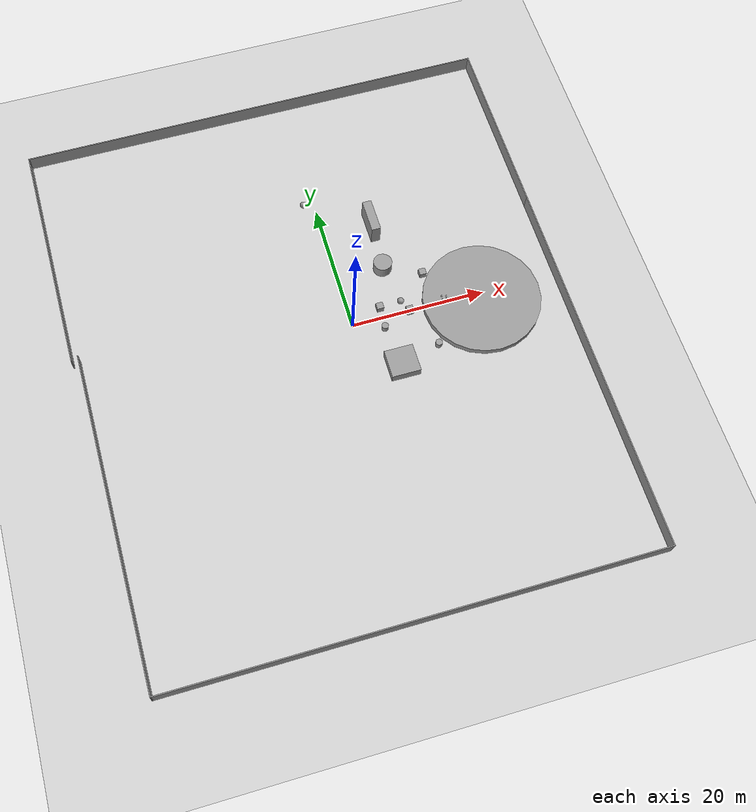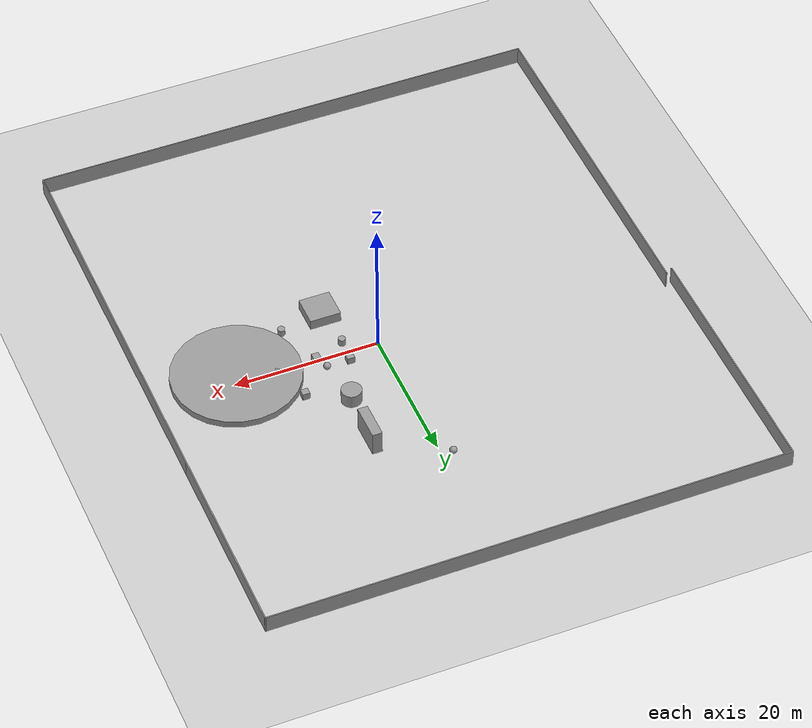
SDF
<sdf version="1.7">
 <world name="default">
  <light name="sun" type="directional">
   <pose>0 0 10 0 -0 0</pose>
   <diffuse>0.8 0.8 0.8 1</diffuse>
   <specular>0.2 0.2 0.2 1</specular>
   <attenuation>
    <range>1000</range>
    <constant>0.9</constant>
    <linear>0.01</linear>
    <quadratic>0.001</quadratic>
   </attenuation>
   <direction>-0.5 0.1 -0.9</direction>
   <spot><inner_angle>0</inner_angle><outer_angle>0</outer_angle><falloff>0</falloff></spot>
  </light>
  <model name="ground_plane">
   <static>1</static>
   <link name="link">
    <collision name="collision">
     <geometry><plane><normal>0 0 1</normal><size>100 100</size></plane></geometry>
     <surface>
      <contact><collide_bitmask>65535</collide_bitmask></contact>
      <friction><ode><mu>100</mu><mu2>50</mu2></ode></friction>
     </surface>
    </collision>
    <visual name="visual">
     <cast_shadows>0</cast_shadows>
     <geometry><plane><normal>0 0 1</normal><size>100 100</size></plane></geometry>
     <material>
      <script><uri>file://media/materials/scripts/gazebo.material</uri><name>Gazebo/Grey</name></script>
     </material>
    </visual>
   </link>
  </model>
  <gravity>0 0 -9.8</gravity>
  <magnetic_field>6e-06 2.3e-05 -4.2e-05</magnetic_field>
  <atmosphere type="adiabatic"/>
  <physics type="ode">
   <max_step_size>0.001</max_step_size>
   <real_time_factor>1</real_time_factor>
   <real_time_update_rate>1000</real_time_update_rate>
  </physics>
  <scene><ambient>0.4 0.4 0.4 1</ambient><background>0.7 0.7 0.7 1</background><shadows>1</shadows></scene>
  <spherical_coordinates>
   <surface_model>EARTH_WGS84</surface_model>
   <latitude_deg>0</latitude_deg>
   <longitude_deg>0</longitude_deg>
   <elevation>0</elevation>
   <heading_deg>0</heading_deg>
  </spherical_coordinates>
  <model name="unit_box">
   <pose>4.5393 1.58874 0.499995 -1e-05 0 0</pose>
   <link name="link">
    <inertial>
     <mass>1</mass>
     <inertia>
      <ixx>0.166667</ixx>
      <ixy>0</ixy>
      <ixz>0</ixz>
      <iyy>0.166667</iyy>
      <iyz>0</iyz>
      <izz>0.166667</izz>
     </inertia>
    </inertial>
    <collision name="collision"><geometry><box><size>1 1 1</size></box></geometry></collision>
    <visual name="visual">
     <geometry><box><size>1 1 1</size></box></geometry>
     <material>
      <script><name>Gazebo/Grey</name><uri>file://media/materials/scripts/gazebo.material</uri></script>
     </material>
    </visual>
   </link>
  </model>
  <model name="unit_cylinder">
   <pose>4.3301 -1.73186 0.499992 -3e-06 4e-06 0</pose>
   <link name="link">
    <inertial>
     <mass>1</mass>
     <inertia><ixx>0.145833</ixx><ixy>0</ixy><ixz>0</ixz><iyy>0.145833</iyy><iyz>0</iyz><izz>0.125</izz></inertia>
    </inertial>
    <collision name="collision">
     <geometry><cylinder><radius>0.5</radius><length>1</length></cylinder></geometry>
    </collision>
    <visual name="visual">
     <geometry><cylinder><radius>0.5</radius><length>1</length></cylinder></geometry>
     <material>
      <script><name>Gazebo/Grey</name><uri>file://media/materials/scripts/gazebo.material</uri></script>
     </material>
    </visual>
   </link>
  </model>
  <model name="unit_sphere">
   <pose>7.78616 1.73401 0.5 0 -0 0</pose>
   <link name="link">
    <inertial>
     <mass>1</mass>
     <inertia><ixx>0.1</ixx><ixy>0</ixy><ixz>0</ixz><iyy>0.1</iyy><iyz>0</iyz><izz>0.1</izz></inertia>
    </inertial>
    <collision name="collision"><geometry><sphere><radius>0.5</radius></sphere></geometry></collision>
    <visual name="visual">
     <geometry><sphere><radius>0.5</radius></sphere></geometry>
     <material>
      <script><name>Gazebo/Grey</name><uri>file://media/materials/scripts/gazebo.material</uri></script>
     </material>
    </visual>
   </link>
  </model>
  <model name="unit_box_0">
   <pose>8.61643 -0.08152 0.499995 0 -1e-05 0</pose>
   <link name="link">
    <inertial>
     <mass>1</mass>
     <inertia>
      <ixx>0.166667</ixx>
      <ixy>0</ixy>
      <ixz>0</ixz>
      <iyy>0.166667</iyy>
      <iyz>0</iyz>
      <izz>0.166667</izz>
     </inertia>
    </inertial>
    <collision name="collision"><geometry><box><size>1 1 1</size></box></geometry></collision>
    <visual name="visual">
     <geometry><box><size>1 1 1</size></box></geometry>
     <material>
      <script><name>Gazebo/Grey</name><uri>file://media/materials/scripts/gazebo.material</uri></script>
     </material>
    </visual>
   </link>
  </model>
  <model name="Untitled">
   <pose>-4.59824 -1.89666 0 0 -0 0</pose>
   <link name="Wall_14">
    <collision name="Wall_14_Collision">
     <geometry><box><size>48.75 0.15 2.5</size></box></geometry>
     <pose>0 0 1.25 0 -0 0</pose>
    </collision>
    <visual name="Wall_14_Visual">
     <pose>0 0 1.25 0 -0 0</pose>
     <geometry><box><size>48.75 0.15 2.5</size></box></geometry>
     <material>
      <script><uri>file://media/materials/scripts/gazebo.material</uri><name>Gazebo/Grey</name></script>
      <ambient>1 1 1 1</ambient>
     </material>
     <meta><layer>0</layer></meta>
    </visual>
    <pose>-34.675 -17.55 0 0 -0 -1.5708</pose>
   </link>
   <link name="Wall_15">
    <collision name="Wall_15_Collision">
     <geometry><box><size>70.5 0.15 2.5</size></box></geometry>
     <pose>0 0 1.25 0 -0 0</pose>
    </collision>
    <visual name="Wall_15_Visual">
     <pose>0 0 1.25 0 -0 0</pose>
     <geometry><box><size>70.5 0.15 2.5</size></box></geometry>
     <material>
      <script><uri>file://media/materials/scripts/gazebo.material</uri><name>Gazebo/Grey</name></script>
      <ambient>1 1 1 1</ambient>
     </material>
     <meta><layer>0</layer></meta>
    </visual>
    <pose>0.5 -41.85 0 0 -0 0</pose>
   </link>
   <link name="Wall_16">
    <collision name="Wall_16_Collision">
     <geometry><box><size>56.25 0.15 2.5</size></box></geometry>
     <pose>0 0 1.25 0 -0 0</pose>
    </collision>
    <visual name="Wall_16_Visual">
     <pose>0 0 1.25 0 -0 0</pose>
     <geometry><box><size>56.25 0.15 2.5</size></box></geometry>
     <material>
      <script><uri>file://media/materials/scripts/gazebo.material</uri><name>Gazebo/Grey</name></script>
      <ambient>1 1 1 1</ambient>
     </material>
     <meta><layer>0</layer></meta>
    </visual>
    <pose>35.675 -13.8 0 0 -0 1.5708</pose>
   </link>
   <link name="Wall_17">
    <collision name="Wall_17_Collision">
     <geometry><box><size>27.75 0.15 2.5</size></box></geometry>
     <pose>0 0 1.25 0 -0 0</pose>
    </collision>
    <visual name="Wall_17_Visual">
     <pose>0 0 1.25 0 -0 0</pose>
     <geometry><box><size>27.75 0.15 2.5</size></box></geometry>
     <material>
      <script><uri>file://media/materials/scripts/gazebo.material</uri><name>Gazebo/Grey</name></script>
      <ambient>1 1 1 1</ambient>
     </material>
     <meta><layer>0</layer></meta>
    </visual>
    <pose>35.675 28.05 0 0 -0 1.5708</pose>
   </link>
   <link name="Wall_18">
    <collision name="Wall_18_Collision">
     <geometry><box><size>71.5 0.15 2.5</size></box></geometry>
     <pose>0 0 1.25 0 -0 0</pose>
    </collision>
    <visual name="Wall_18_Visual">
     <pose>0 0 1.25 0 -0 0</pose>
     <geometry><box><size>71.5 0.15 2.5</size></box></geometry>
     <material>
      <script><uri>file://media/materials/scripts/gazebo.material</uri><name>Gazebo/Grey</name></script>
      <ambient>1 1 1 1</ambient>
     </material>
     <meta><layer>0</layer></meta>
    </visual>
    <pose>-0 41.85 0 0 -0 3.14159</pose>
   </link>
   <link name="Wall_19">
    <collision name="Wall_19_Collision">
     <geometry><box><size>35.75 0.15 2.5</size></box></geometry>
     <pose>0 0 1.25 0 -0 0</pose>
    </collision>
    <visual name="Wall_19_Visual">
     <pose>0 0 1.25 0 -0 0</pose>
     <geometry><box><size>35.75 0.15 2.5</size></box></geometry>
     <material>
      <script><uri>file://media/materials/scripts/gazebo.material</uri><name>Gazebo/Grey</name></script>
      <ambient>1 1 1 1</ambient>
     </material>
     <meta><layer>0</layer></meta>
    </visual>
    <pose>-35.675 24.05 0 0 -0 -1.5708</pose>
   </link>
   <static>1</static>
  </model>
  <model name="unit_cylinder_0">
   <pose>13.9708 0.373021 0.5 0 -0 0</pose>
   <link name="link">
    <inertial>
     <mass>1</mass>
     <inertia><ixx>0.145833</ixx><ixy>0</ixy><ixz>0</ixz><iyy>0.145833</iyy><iyz>0</iyz><izz>0.125</izz></inertia>
    </inertial>
    <collision name="collision">
     <geometry><cylinder><radius>0.5</radius><length>1</length></cylinder></geometry>
    </collision>
    <visual name="visual">
     <geometry><cylinder><radius>0.5</radius><length>1</length></cylinder></geometry>
     <material>
      <script><name>Gazebo/Grey</name><uri>file://media/materials/scripts/gazebo.material</uri></script>
     </material>
    </visual>
   </link>
  </model>
  <model name="unit_box_1">
   <pose>12.2691 5.33119 0.5 0 -0 0</pose>
   <link name="link">
    <inertial>
     <mass>1</mass>
     <inertia>
      <ixx>0.166667</ixx>
      <ixy>0</ixy>
      <ixz>0</ixz>
      <iyy>0.166667</iyy>
      <iyz>0</iyz>
      <izz>0.166667</izz>
     </inertia>
    </inertial>
    <collision name="collision"><geometry><box><size>1 1 1</size></box></geometry></collision>
    <visual name="visual">
     <geometry><box><size>1 1 1</size></box></geometry>
     <material>
      <script><name>Gazebo/Grey</name><uri>file://media/materials/scripts/gazebo.material</uri></script>
     </material>
    </visual>
   </link>
  </model>
  <model name="unit_cylinder_1">
   <pose>11.0125 -6.40665 0.5 0 -0 0</pose>
   <link name="link">
    <inertial>
     <mass>1</mass>
     <inertia><ixx>0.145833</ixx><ixy>0</ixy><ixz>0</ixz><iyy>0.145833</iyy><iyz>0</iyz><izz>0.125</izz></inertia>
    </inertial>
    <collision name="collision">
     <geometry><cylinder><radius>0.5</radius><length>1</length></cylinder></geometry>
    </collision>
    <visual name="visual">
     <geometry><cylinder><radius>0.5</radius><length>1</length></cylinder></geometry>
     <material>
      <script><name>Gazebo/Grey</name><uri>file://media/materials/scripts/gazebo.material</uri></script>
     </material>
    </visual>
   </link>
  </model>
  <model name="unit_cylinder_2">
   <pose>6.91653 8.01316 0.5 0 -0 0</pose>
   <link name="link">
    <inertial>
     <mass>1</mass>
     <inertia><ixx>0.145833</ixx><ixy>0</ixy><ixz>0</ixz><iyy>0.145833</iyy><iyz>0</iyz><izz>0.125</izz></inertia>
    </inertial>
    <collision name="collision">
     <geometry><cylinder><radius>1.38345</radius><length>2.64333</length></cylinder></geometry>
    </collision>
    <visual name="visual">
     <geometry><cylinder><radius>1.38345</radius><length>2.64333</length></cylinder></geometry>
     <material>
      <script><name>Gazebo/Grey</name><uri>file://media/materials/scripts/gazebo.material</uri></script>
     </material>
    </visual>
   </link>
  </model>
  <model name="unit_box_2">
   <pose>4.98803 -7.90615 0.5 0 -0 0</pose>
   <link name="link">
    <inertial>
     <mass>1</mass>
     <inertia>
      <ixx>0.166667</ixx>
      <ixy>0</ixy>
      <ixz>0</ixz>
      <iyy>0.166667</iyy>
      <iyz>0</iyz>
      <izz>0.166667</izz>
     </inertia>
    </inertial>
    <collision name="collision"><geometry><box><size>4.27196 4.19667 1.73007</size></box></geometry></collision>
    <visual name="visual">
     <geometry><box><size>4.27196 4.19667 1.73007</size></box></geometry>
     <material>
      <script><name>Gazebo/Grey</name><uri>file://media/materials/scripts/gazebo.material</uri></script>
     </material>
    </visual>
   </link>
  </model>
  <model name="unit_cylinder_3">
   <pose>19.2974 -1.15108 0.5 0 -0 0</pose>
   <link name="link">
    <inertial>
     <mass>1</mass>
     <inertia><ixx>0.145833</ixx><ixy>0</ixy><ixz>0</ixz><iyy>0.145833</iyy><iyz>0</iyz><izz>0.125</izz></inertia>
    </inertial>
    <collision name="collision">
     <geometry><cylinder><radius>8.71475</radius><length>1</length></cylinder></geometry>
    </collision>
    <visual name="visual">
     <geometry><cylinder><radius>8.71475</radius><length>1</length></cylinder></geometry>
     <material>
      <script><name>Gazebo/Grey</name><uri>file://media/materials/scripts/gazebo.material</uri></script>
     </material>
    </visual>
   </link>
  </model>
  <model name="unit_sphere_0">
   <pose>-1.53712 21.6128 0.5 0 -0 0</pose>
   <link name="link">
    <inertial>
     <mass>1</mass>
     <inertia><ixx>0.1</ixx><ixy>0</ixy><ixz>0</ixz><iyy>0.1</iyy><iyz>0</iyz><izz>0.1</izz></inertia>
    </inertial>
    <collision name="collision"><geometry><sphere><radius>0.5</radius></sphere></geometry></collision>
    <visual name="visual">
     <geometry><sphere><radius>0.5</radius></sphere></geometry>
     <material>
      <script><name>Gazebo/Grey</name><uri>file://media/materials/scripts/gazebo.material</uri></script>
     </material>
    </visual>
   </link>
  </model>
  <model name="unit_box_3">
   <pose>7.33857 15.3465 0.5 0 -0 0</pose>
   <link name="link">
    <inertial>
     <mass>1</mass>
     <inertia>
      <ixx>0.166667</ixx>
      <ixy>0</ixy>
      <ixz>0</ixz>
      <iyy>0.166667</iyy>
      <iyz>0</iyz>
      <izz>0.166667</izz>
     </inertia>
    </inertial>
    <collision name="collision"><geometry><box><size>1.36425 5.02536 5.69409</size></box></geometry></collision>
    <visual name="visual">
     <geometry><box><size>1.36425 5.02536 5.69409</size></box></geometry>
     <material>
      <script><name>Gazebo/Grey</name><uri>file://media/materials/scripts/gazebo.material</uri></script>
     </material>
    </visual>
   </link>
  </model>
 </world>
</sdf>
